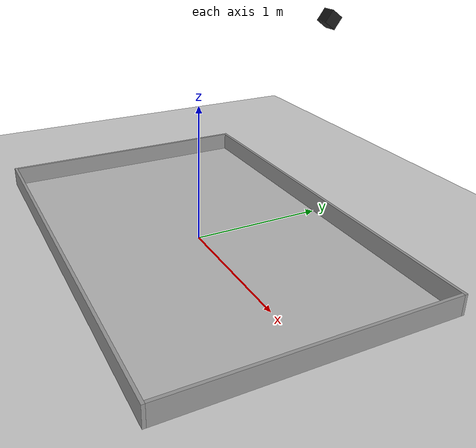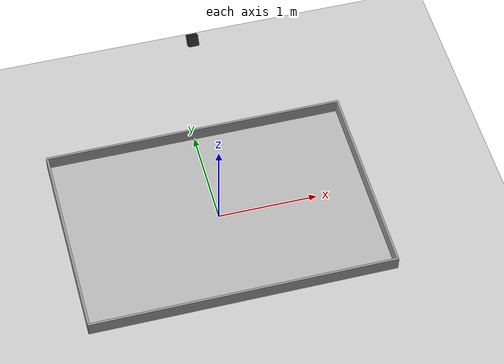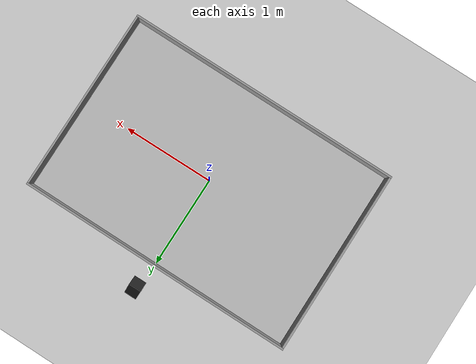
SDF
<?xml version="1.0" ?>
<sdf version="1.6">
  <world name="eurobot_2026">
    <include>
      <uri>model://sun</uri>
    </include>
    <include>
      <uri>model://ground_plane</uri>
    </include>

    <model name='eurobot_field'>
      <static>1</static>
      <pose>0 0 0 0 0 0</pose>

      <link name='floor'>
        <collision name='collision'>
          <geometry><box><size>3.0 2.0 0.01</size></box></geometry>
        </collision>
        <visual name='visual'>
          <geometry><box><size>3.0 2.0 0.01</size></box></geometry>
          <material>
            <script>
              <uri>file://materials/scripts/eurobot.material</uri>
              <name>Eurobot/Tablero_Final</name>
            </script>
          </material>
        </visual>
      </link>

      <link name='wall_back'>
        <pose>0 1.011 0.075 0 0 0</pose>
        <visual name='vis'><geometry><box><size>3.044 0.022 0.15</size></box></geometry><material><script><name>Gazebo/Grey</name></script></material></visual>
        <collision name='col'><geometry><box><size>3.044 0.022 0.15</size></box></geometry></collision>
      </link>
      <link name='wall_front'>
        <pose>0 -1.011 0.075 0 0 0</pose>
        <visual name='vis'><geometry><box><size>3.044 0.022 0.15</size></box></geometry><material><script><name>Gazebo/Grey</name></script></material></visual>
        <collision name='col'><geometry><box><size>3.044 0.022 0.15</size></box></geometry></collision>
      </link>
      <link name='wall_left'>
        <pose>-1.511 0 0.075 0 0 0</pose>
        <visual name='vis'><geometry><box><size>0.022 2.0 0.15</size></box></geometry><material><script><name>Gazebo/Grey</name></script></material></visual>
        <collision name='col'><geometry><box><size>0.022 2.0 0.15</size></box></geometry></collision>
      </link>
      <link name='wall_right'>
        <pose>1.511 0 0.075 0 0 0</pose>
        <visual name='vis'><geometry><box><size>0.022 2.0 0.15</size></box></geometry><material><script><name>Gazebo/Grey</name></script></material></visual>
        <collision name='col'><geometry><box><size>0.022 2.0 0.15</size></box></geometry></collision>
      </link>

    </model>

    <model name='overhead_camera'>
      <static>1</static>
      <pose>0 1.011 1.5 0 0.942 -1.57</pose>
      <link name='camera_link'>
        <visual name='visual'>
          <geometry>
            <box>
              <size>0.1 0.1 0.1</size>
            </box>
          </geometry>
          <material>
            <script>
              <name>Gazebo/Black</name>
              <uri>file://media/materials/scripts/gazebo.material</uri>
            </script>
          </material>
        </visual>
        <sensor name='camera_sensor' type='camera'>
          <always_on>1</always_on>
          <update_rate>30</update_rate>
          <camera>
            <horizontal_fov>1.8</horizontal_fov>
            <image>
              <width>1280</width>
              <height>720</height>
              <format>R8G8B8</format>
            </image>
            <clip>
              <near>0.1</near>
              <far>100</far>
            </clip>
          </camera>
          <visualize>1</visualize>
          <topic>/overhead_camera/image_raw</topic>
          <plugin name="gazebo_ros_camera" filename="libgazebo_ros_camera.so">
            <always_on>true</always_on>
            <update_rate>30</update_rate>
            <camera_name>overhead_camera</camera_name>
            <image_topic_name>image_raw</image_topic_name>
            <camera_info_topic_name>camera_info</camera_info_topic_name>
            <frame_name>overhead_camera_link</frame_name>
          </plugin>
        </sensor>
      </link>
    </model>

  </world>
</sdf>
